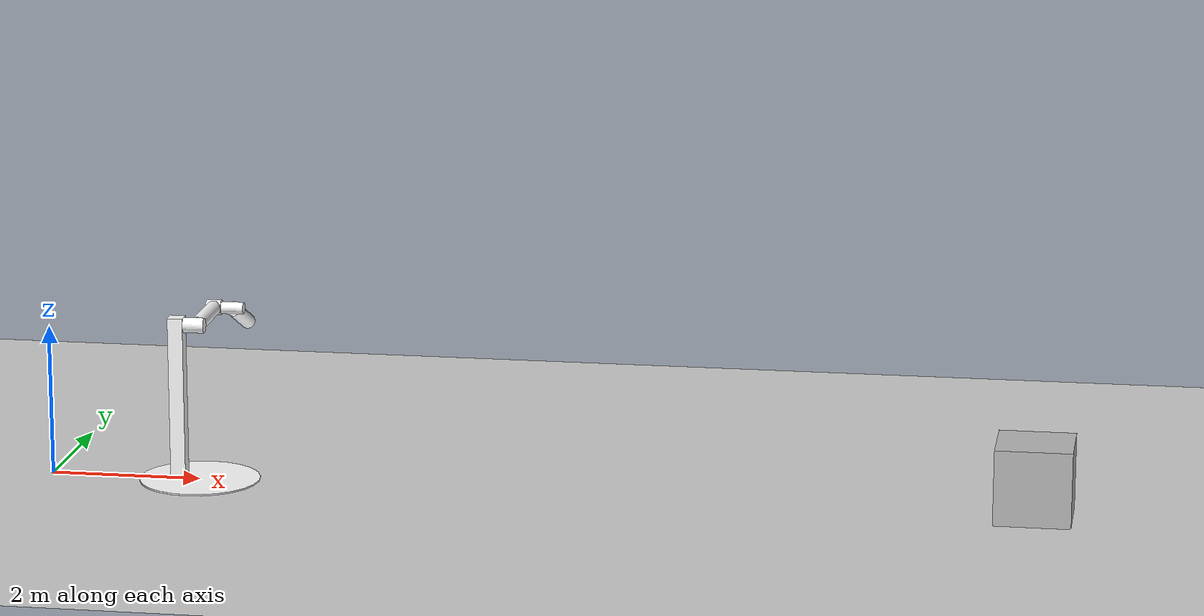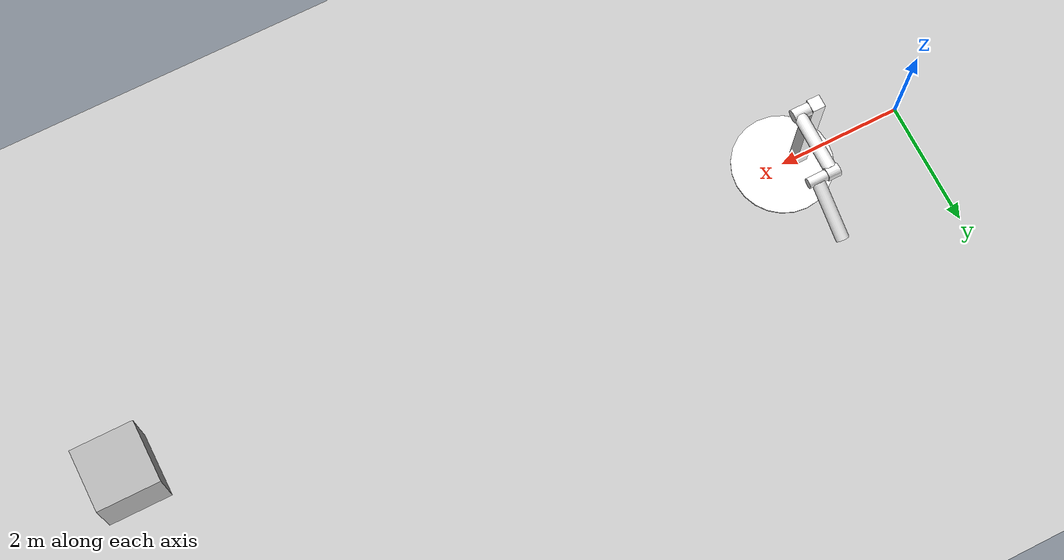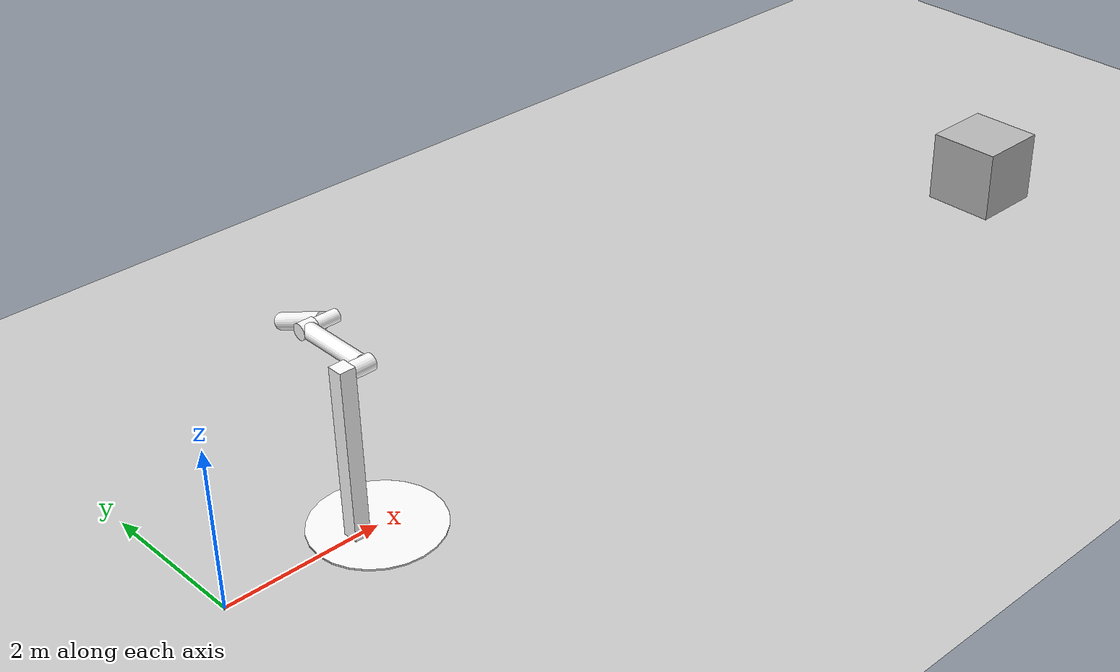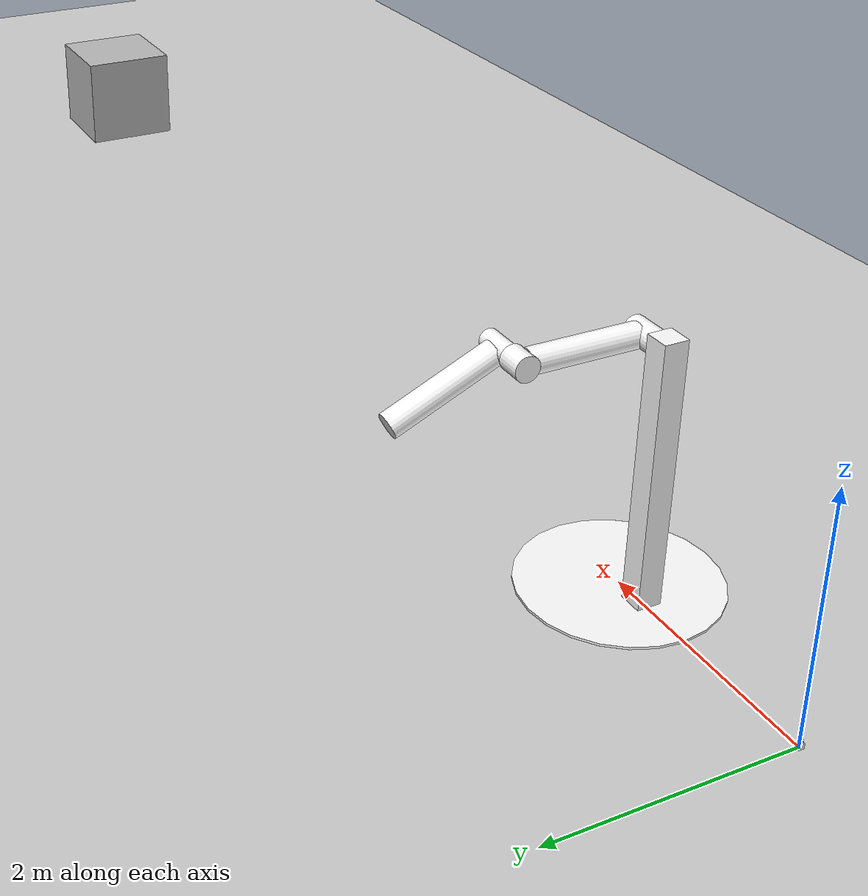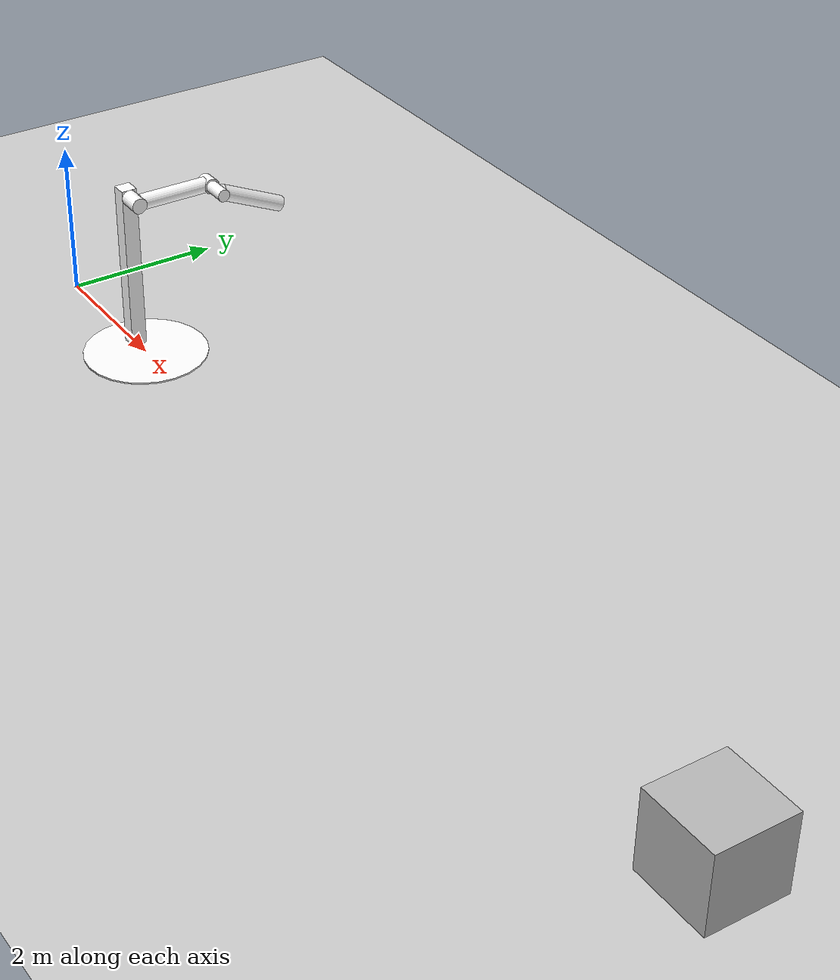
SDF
<?xml version="1.0" ?>
<sdf version="1.6">
  <world name="default">
    <include>
      <uri>model://ground_plane</uri>
    </include>
    <include>
      <uri>model://sun</uri>
    </include>

    <model name="gpu_ray_model">
      <static>true</static>
      <pose>0 0 0.035 0. 0 0</pose>
      <link name="link">
        <inertial>
          <mass>0.1</mass>
        </inertial>
        <visual name="visual">
          <geometry>
            <mesh>
              <uri>model://hokuyo/meshes/hokuyo.dae</uri>
            </mesh>
          </geometry>
        </visual>
        <sensor name="gpu_ray_sensor" type="gpu_ray" xmlns:strict_rate="https://github.com/osrf/gazebo/issues/2736">
          <pose>0.1 0 0.0175 0 -0 0</pose>
          <ray>
            <scan>
              <horizontal>
                <samples>640</samples>
                <resolution>1</resolution>
                <min_angle>-1.396263</min_angle>
                <max_angle>1.396263</max_angle>
              </horizontal>
              <vertical>
                <samples>480</samples>
                <resolution>1</resolution>
                <min_angle>-1.396263</min_angle>
                <max_angle>1.396263</max_angle>
              </vertical>
            </scan>
            <range>
              <min>0.08</min>
              <max>10.0</max>
              <resolution>0.01</resolution>
            </range>
          </ray>
          <always_on>1</always_on>
          <!-- We choose a high fps on purpose. The goal is to check the effect
            of the flag "strict_rate". -->
          <update_rate>500</update_rate>
          <strict_rate:value>true</strict_rate:value>
          <visualize>false</visualize>
        </sensor>
      </link>
    </model>

    <model name="box">
      <pose>13 0 0.5 0 0 0</pose>
      <link name="link">
        <collision name="collision">
          <geometry>
            <box>
              <size>5 5 5</size>
            </box>
          </geometry>
        </collision>
        <visual name="visual">
          <geometry>
            <box>
              <size>1 1 1</size>
            </box>
          </geometry>
        </visual>
      </link>
    </model>

    <!-- Double pendulum -->
    <include>
      <name>active_pendulum</name>
      <uri>model://double_pendulum_with_base</uri>
      <pose>2 0 0 0 0 0</pose>
      <scale>0.5 0.5 0.5</scale>
    </include>

  </world>
</sdf>

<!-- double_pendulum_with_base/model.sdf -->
<sdf version="1.5">
  <model name="double_pendulum_with_base">
    <link name="base">
      <inertial>
        <mass>100</mass>
      </inertial>
      <visual name="vis_plate_on_ground">
        <pose>0 0 0.01 0 0 0</pose>
        <geometry>
          <cylinder>
            <radius>0.8</radius>
            <length>0.02</length>
          </cylinder>
        </geometry>
        <material><diffuse>1 1 1 1</diffuse><specular>0.1 0.1 0.1 1</specular></material>
      </visual>
      <visual name="vis_pole">
        <pose>-0.275 0 1.1 0 0 0</pose>
        <geometry>
          <box>
            <size>0.2 0.2 2.2</size>
          </box>
        </geometry>
        <material><diffuse>1 1 1 1</diffuse><specular>0.1 0.1 0.1 1</specular></material>
      </visual>
      <collision name="col_plate_on_ground">
        <pose>0 0 0.01 0 0 0</pose>
        <geometry>
          <cylinder>
            <radius>0.8</radius>
            <length>0.02</length>
          </cylinder>
        </geometry>
      </collision>
      <collision name="col_pole">
        <pose>-0.275 0 1.1 0 0 0</pose>
        <geometry>
          <box>
            <size>0.2 0.2 2.2</size>
          </box>
        </geometry>
      </collision>
    </link>
    <!-- upper link, length 1, IC -90 degrees -->
    <link name="upper_link">
      <pose>0 0 2.1 -1.5708 0 0</pose>
      <self_collide>0</self_collide>
      <inertial>
        <pose>0 0 0.5 0 0 0</pose>
      </inertial>
      <visual name="vis_upper_joint">
        <pose>-0.05 0 0 0 1.5708 0</pose>
        <geometry>
          <cylinder>
            <radius>0.1</radius>
            <length>0.3</length>
          </cylinder>
        </geometry>
        <material><diffuse>1 1 1 1</diffuse><specular>0.1 0.1 0.1 1</specular></material>
      </visual>
      <visual name="vis_lower_joint">
        <pose>0 0 1.0 0 1.5708 0</pose>
        <geometry>
          <cylinder>
            <radius>0.1</radius>
            <length>0.2</length>
          </cylinder>
        </geometry>
        <material><diffuse>1 1 1 1</diffuse><specular>0.1 0.1 0.1 1</specular></material>
      </visual>
      <visual name="vis_cylinder">
        <pose>0 0 0.5 0 0 0</pose>
        <geometry>
          <cylinder>
            <radius>0.1</radius>
            <length>0.9</length>
          </cylinder>
        </geometry>
        <material><diffuse>1 1 1 1</diffuse><specular>0.1 0.1 0.1 1</specular></material>
      </visual>
      <collision name="col_upper_joint">
        <pose>-0.05 0 0 0 1.5708 0</pose>
        <geometry>
          <cylinder>
            <radius>0.1</radius>
            <length>0.3</length>
          </cylinder>
        </geometry>
      </collision>
      <collision name="col_lower_joint">
        <pose>0 0 1.0 0 1.5708 0</pose>
        <geometry>
          <cylinder>
            <radius>0.1</radius>
            <length>0.2</length>
          </cylinder>
        </geometry>
      </collision>
      <collision name="col_cylinder">
        <pose>0 0 0.5 0 0 0</pose>
        <geometry>
          <cylinder>
            <radius>0.1</radius>
            <length>0.9</length>
          </cylinder>
        </geometry>
      </collision>
    </link>
    <!-- lower link, length 1, IC ~-120 degrees more -->
    <link name="lower_link">
      <pose>0.25 1.0 2.1 -2 0 0</pose>
      <self_collide>0</self_collide>
      <inertial>
        <pose>0 0 0.5 0 0 0</pose>
      </inertial>
      <visual name="vis_lower_joint">
        <pose>0 0 0 0 1.5708 0</pose>
        <geometry>
          <cylinder>
            <radius>0.08</radius>
            <length>0.3</length>
          </cylinder>
        </geometry>
        <material><diffuse>1 1 1 1</diffuse><specular>0.1 0.1 0.1 1</specular></material>
      </visual>
      <visual name="vis_cylinder">
        <pose>0 0 0.5 0 0 0</pose>
        <geometry>
          <cylinder>
            <radius>0.1</radius>
            <length>0.9</length>
          </cylinder>
        </geometry>
        <material><diffuse>1 1 1 1</diffuse><specular>0.1 0.1 0.1 1</specular></material>
      </visual>
      <collision name="col_lower_joint">
        <pose>0 0 0 0 1.5708 0</pose>
        <geometry>
          <cylinder>
            <radius>0.08</radius>
            <length>0.3</length>
          </cylinder>
        </geometry>
      </collision>
      <collision name="col_cylinder">
        <pose>0 0 0.5 0 0 0</pose>
        <geometry>
          <cylinder>
            <radius>0.1</radius>
            <length>0.9</length>
          </cylinder>
        </geometry>
      </collision>
    </link>
    <!-- pin joint for upper link, at origin of upper link -->
    <joint name="upper_joint" type="revolute">
      <parent>base</parent>
      <child>upper_link</child>
      <axis>
        <xyz>1.0 0 0</xyz>
      </axis>
    </joint>
    <!-- pin joint for lower link, at origin of child link -->
    <joint name="lower_joint" type="revolute">
      <parent>upper_link</parent>
      <child>lower_link</child>
      <axis>
        <xyz>1.0 0 0</xyz>
      </axis>
    </joint>
  </model>
</sdf>
